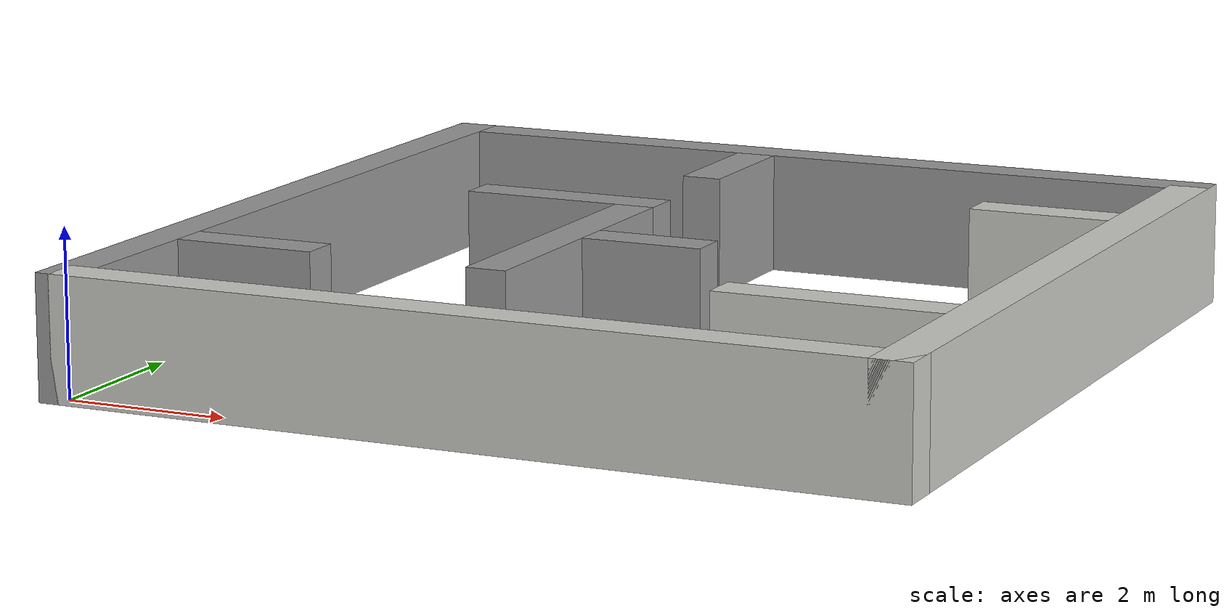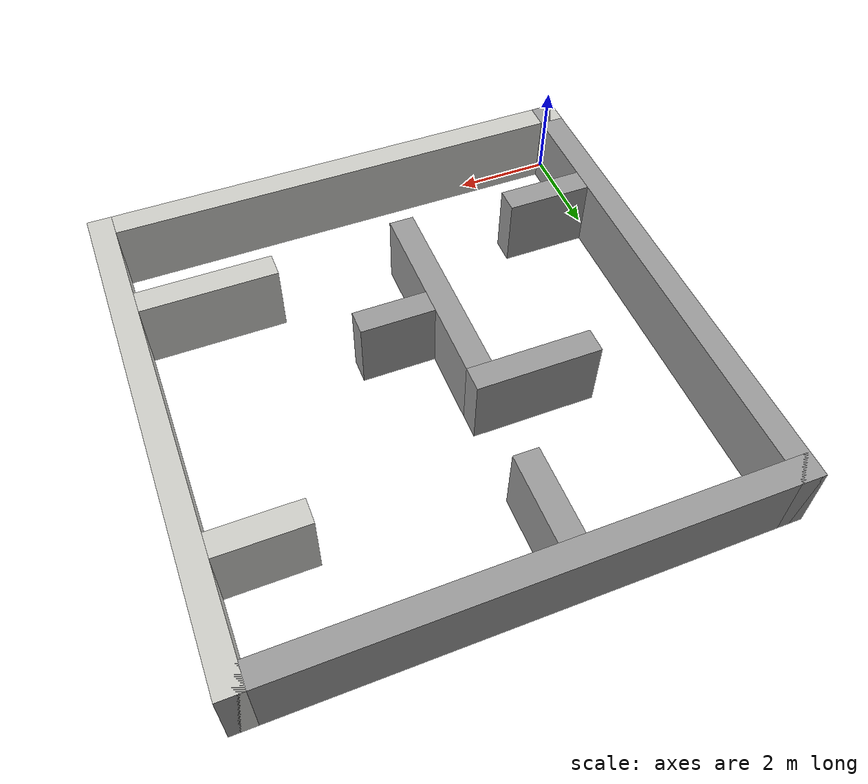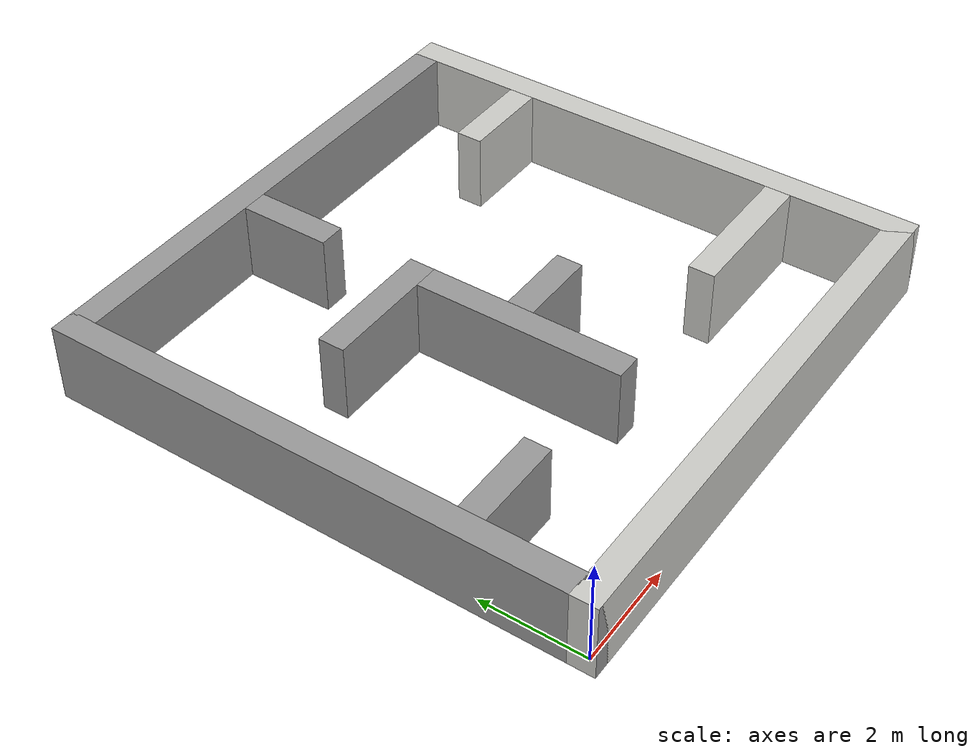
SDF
<?xml version='1.0'?>
<sdf version='1.7'>
  <model name='office_environment'>
    <pose>5 5 0 0 -0 0</pose>
    <link name='Wall_11'>
      <collision name='Wall_11_Collision'>
        <geometry>
          <box>
            <size>10.5 0.5 1.5</size>
          </box>
        </geometry>
        <pose>0 0 0.75 0 -0 0</pose>
      </collision>
      <visual name='Wall_11_Visual'>
        <pose>0 0 0.75 0 -0 0</pose>
        <geometry>
          <box>
            <size>10.5 0.5 1.5</size>
          </box>
        </geometry>
        <material>
          <script>
            <uri>file://media/materials/scripts/gazebo.material</uri>
            <name>Gazebo/CeilingTiled</name>
          </script>
          <ambient>0 0 0 1</ambient>
        </material>
        <meta>
          <layer>0</layer>
        </meta>
      </visual>
      <pose>5 0 0 0 -0 -1.5708</pose>
    </link>
    <link name='Wall_13'>
      <collision name='Wall_13_Collision'>
        <geometry>
          <box>
            <size>10.5 0.5 1.5</size>
          </box>
        </geometry>
        <pose>0 0 0.75 0 -0 0</pose>
      </collision>
      <visual name='Wall_13_Visual'>
        <pose>0 0 0.75 0 -0 0</pose>
        <geometry>
          <box>
            <size>10.5 0.5 1.5</size>
          </box>
        </geometry>
        <material>
          <script>
            <uri>file://media/materials/scripts/gazebo.material</uri>
            <name>Gazebo/Grey</name>
          </script>
          <ambient>0 0 0 1</ambient>
        </material>
        <meta>
          <layer>0</layer>
        </meta>
      </visual>
      <pose>-0 5 0 0 -0 0</pose>
    </link>
    <link name='Wall_15'>
      <collision name='Wall_15_Collision'>
        <geometry>
          <box>
            <size>1.75 0.5 1.5</size>
          </box>
        </geometry>
        <pose>0 0 0.75 0 -0 0</pose>
      </collision>
      <visual name='Wall_15_Visual'>
        <pose>0 0 0.75 0 -0 0</pose>
        <geometry>
          <box>
            <size>1.75 0.5 1.5</size>
          </box>
        </geometry>
        <material>
          <script>
            <uri>file://media/materials/scripts/gazebo.material</uri>
            <name>Gazebo/Grey</name>
          </script>
          <ambient>0 0 0 1</ambient>
        </material>
        <meta>
          <layer>0</layer>
        </meta>
      </visual>
      <pose>-0.75 3.875 0 0 -0 1.5708</pose>
    </link>
    <link name='Wall_17'>
      <collision name='Wall_17_Collision'>
        <geometry>
          <box>
            <size>1.75 0.5 1.5</size>
          </box>
        </geometry>
        <pose>0 0 0.75 0 -0 0</pose>
      </collision>
      <visual name='Wall_17_Visual'>
        <pose>0 0 0.75 0 -0 0</pose>
        <geometry>
          <box>
            <size>1.75 0.5 1.5</size>
          </box>
        </geometry>
        <material>
          <script>
            <uri>file://media/materials/scripts/gazebo.material</uri>
            <name>Gazebo/CeilingTiled</name>
          </script>
          <ambient>0 0 0 1</ambient>
        </material>
        <meta>
          <layer>0</layer>
        </meta>
      </visual>
      <pose>3.875 2.75 0 0 -0 0</pose>
    </link>
    <link name='Wall_19'>
      <collision name='Wall_19_Collision'>
        <geometry>
          <box>
            <size>4 0.5 1.5</size>
          </box>
        </geometry>
        <pose>0 0 0.75 0 -0 0</pose>
      </collision>
      <visual name='Wall_19_Visual'>
        <pose>0 0 0.75 0 -0 0</pose>
        <geometry>
          <box>
            <size>4 0.5 1.5</size>
          </box>
        </geometry>
        <material>
          <script>
            <uri>file://media/materials/scripts/gazebo.material</uri>
            <name>Gazebo/Grey</name>
          </script>
          <ambient>0 0 0 1</ambient>
        </material>
        <meta>
          <layer>0</layer>
        </meta>
      </visual>
      <pose>-0.75 -1 0 0 -0 1.5708</pose>
    </link>
    <link name='Wall_21'>
      <collision name='Wall_21_Collision'>
        <geometry>
          <box>
            <size>2.75 0.5 1.5</size>
          </box>
        </geometry>
        <pose>0 0 0.75 0 -0 0</pose>
      </collision>
      <visual name='Wall_21_Visual'>
        <pose>0 0 0.75 0 -0 0</pose>
        <geometry>
          <box>
            <size>2.75 0.5 1.5</size>
          </box>
        </geometry>
        <material>
          <script>
            <uri>file://media/materials/scripts/gazebo.material</uri>
            <name>Gazebo/CeilingTiled</name>
          </script>
          <ambient>0 0 0 1</ambient>
        </material>
        <meta>
          <layer>0</layer>
        </meta>
      </visual>
      <pose>3.375 -2.75 0 0 -0 0</pose>
    </link>
    <link name='Wall_25'>
      <collision name='Wall_25_Collision'>
        <geometry>
          <box>
            <size>1.5 0.5 1.5</size>
          </box>
        </geometry>
        <pose>0 0 0.75 0 -0 0</pose>
      </collision>
      <visual name='Wall_25_Visual'>
        <pose>0 0 0.75 0 -0 0</pose>
        <geometry>
          <box>
            <size>1.5 0.5 1.5</size>
          </box>
        </geometry>
        <material>
          <script>
            <uri>file://media/materials/scripts/gazebo.material</uri>
            <name>Gazebo/Grey</name>
          </script>
          <ambient>0 0 0 1</ambient>
        </material>
        <meta>
          <layer>0</layer>
        </meta>
      </visual>
      <pose>0.25 -0.75 0 0 -0 0</pose>
    </link>
    <link name='Wall_27'>
      <collision name='Wall_27_Collision'>
        <geometry>
          <box>
            <size>1.75 0.5 1.5</size>
          </box>
        </geometry>
        <pose>0 0 0.75 0 -0 0</pose>
      </collision>
      <visual name='Wall_27_Visual'>
        <pose>0 0 0.75 0 -0 0</pose>
        <geometry>
          <box>
            <size>1.75 0.5 1.5</size>
          </box>
        </geometry>
        <material>
          <script>
            <uri>file://media/materials/scripts/gazebo.material</uri>
            <name>Gazebo/Grey</name>
          </script>
          <ambient>0 0 0 1</ambient>
        </material>
        <meta>
          <layer>0</layer>
        </meta>
      </visual>
      <pose>-3.875 -2.75 0 0 -0 0</pose>
    </link>
    <link name='Wall_29'>
      <collision name='Wall_29_Collision'>
        <geometry>
          <box>
            <size>2.5 0.5 1.5</size>
          </box>
        </geometry>
        <pose>0 0 0.75 0 -0 0</pose>
      </collision>
      <visual name='Wall_29_Visual'>
        <pose>0 0 0.75 0 -0 0</pose>
        <geometry>
          <box>
            <size>2.5 0.5 1.5</size>
          </box>
        </geometry>
        <material>
          <script>
            <uri>file://media/materials/scripts/gazebo.material</uri>
            <name>Gazebo/Grey</name>
          </script>
          <ambient>0 0 0 1</ambient>
        </material>
        <meta>
          <layer>0</layer>
        </meta>
      </visual>
      <pose>-1.75 1.25 0 0 -0 0</pose>
    </link>
    <link name='Wall_7'>
      <collision name='Wall_7_Collision'>
        <geometry>
          <box>
            <size>10.5 0.5 1.5</size>
          </box>
        </geometry>
        <pose>0 0 0.75 0 -0 0</pose>
      </collision>
      <visual name='Wall_7_Visual'>
        <pose>0 0 0.75 0 -0 0</pose>
        <geometry>
          <box>
            <size>10.5 0.5 1.5</size>
          </box>
        </geometry>
        <material>
          <script>
            <uri>file://media/materials/scripts/gazebo.material</uri>
            <name>Gazebo/Grey</name>
          </script>
          <ambient>0 0 0 1</ambient>
        </material>
        <meta>
          <layer>0</layer>
        </meta>
      </visual>
      <pose>-5 0 0 0 -0 1.5708</pose>
    </link>
    <link name='Wall_9'>
      <collision name='Wall_9_Collision'>
        <geometry>
          <box>
            <size>10.5 0.5 1.5</size>
          </box>
        </geometry>
        <pose>0 0 0.75 0 -0 0</pose>
      </collision>
      <visual name='Wall_9_Visual'>
        <pose>0 0 0.75 0 -0 0</pose>
        <geometry>
          <box>
            <size>10.5 0.5 1.5</size>
          </box>
        </geometry>
        <material>
          <script>
            <uri>file://media/materials/scripts/gazebo.material</uri>
            <name>Gazebo/CeilingTiled</name>
          </script>
          <ambient>0 0 0 1</ambient>
        </material>
        <meta>
          <layer>0</layer>
        </meta>
      </visual>
      <pose>-0 -5 0 0 -0 0</pose>
    </link>
    <static>1</static>
  </model>
</sdf>
